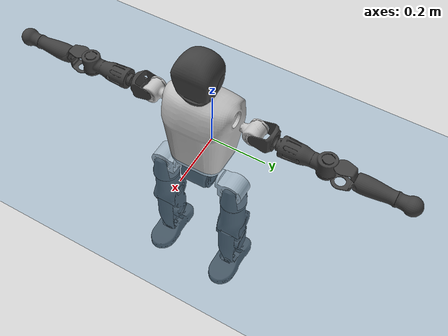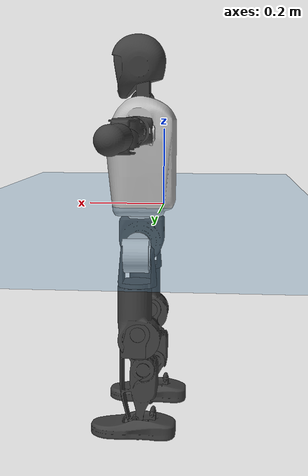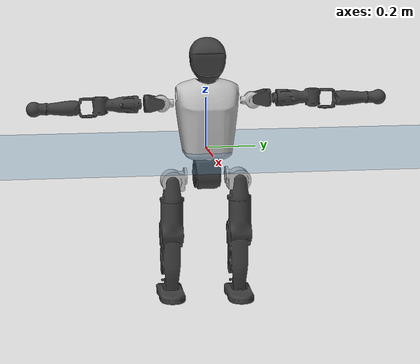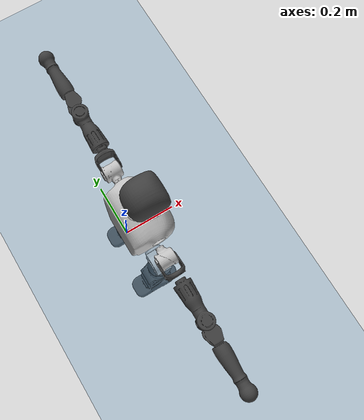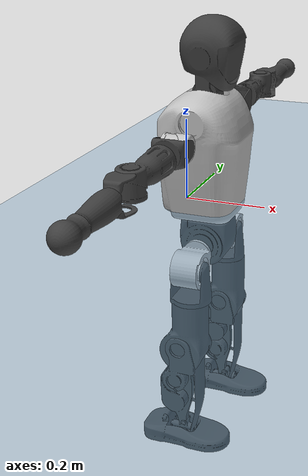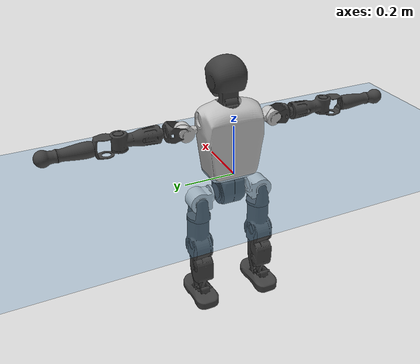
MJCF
<mujoco model="T1">
  <compiler angle="radian" assetdir="assets" balanceinertia="true" inertiafromgeom="false"/>

  <option timestep="0.005" density="1.2" viscosity="2e-05"/>

  <size nkey="1"/>

  <visual>
    <quality shadowsize="8192"/>
    <map shadowclip="0.5"/>
  </visual>

  <default>
    <default class="/">
      <joint armature="0.01" damping="0.01" frictionloss="0.1"/>
      <geom contype="0" conaffinity="0" group="1" solref="-1000 -80"/>
      <site size="0.01 0.005 0.005" group="5"/>
      <general forcelimited="true" biastype="affine" gainprm="25" biasprm="0 -25 -0.6"/>
      <default class="t1">
        <geom rgba="0.25 0.25 0.25 1"/>
        <default class="visual">
          <geom type="mesh" group="2"/>
        </default>
        <default class="collision">
          <geom group="3"/>
        </default>
        <default class="foot">
          <geom size="0.1115 0.05 0.015" type="box" condim="6" group="4" priority="1" solimp="0.015 1 0.015"/>
        </default>
        <default class="reward_collision_sphere">
          <geom group="5" rgba="1 0 0 1"/>
        </default>
      </default>
    </default>
  </default>

  <asset>
    <texture type="skybox" colorspace="auto" name="//unnamed_texture_0" builtin="gradient" rgb1="0.95 0.95 0.95" rgb2="0.95 0.95 0.95" width="100" height="600"/>
    <texture type="2d" colorspace="auto" name="texplane" builtin="checker" rgb1="0.345 0.575 0.748" rgb2="0.345 0.575 0.748" markrgb="1 1 1" width="512" height="512"/>
    <material name="MatPlane" class="/" texture="texplane" texuniform="true" texrepeat="2 2" specular="0.9"/>
    <mesh name="Trunk" class="/" file="Trunk.stl"/>
    <mesh name="H1" class="/" file="H1.stl"/>
    <mesh name="H2" class="/" file="H2.stl"/>
    <mesh name="AL1" class="/" file="AL1.stl"/>
    <mesh name="AL2" class="/" file="AL2.stl"/>
    <mesh name="AL3" class="/" file="AL3.stl"/>
    <mesh name="left_hand_link" class="/" file="left_hand_link.stl"/>
    <mesh name="AR1" class="/" file="AR1.stl"/>
    <mesh name="AR2" class="/" file="AR2.stl"/>
    <mesh name="AR3" class="/" file="AR3.stl"/>
    <mesh name="right_hand_link" class="/" file="right_hand_link.stl"/>
    <mesh name="Waist" class="/" file="Waist.stl"/>
    <mesh name="Hip_Pitch_Left" class="/" file="Hip_Pitch_Left.stl"/>
    <mesh name="Hip_Roll_Left" class="/" file="Hip_Roll_Left.stl"/>
    <mesh name="Hip_Yaw_Left" class="/" file="Hip_Yaw_Left.stl"/>
    <mesh name="Shank_Left" class="/" file="Shank_Left.stl"/>
    <mesh name="Ankle_Cross_Left" class="/" file="Ankle_Cross_Left.stl"/>
    <mesh name="left_foot_link" class="/" file="left_foot_link.stl"/>
    <mesh name="Hip_Pitch_Right" class="/" file="Hip_Pitch_Right.stl"/>
    <mesh name="Hip_Roll_Right" class="/" file="Hip_Roll_Right.stl"/>
    <mesh name="Hip_Yaw_Right" class="/" file="Hip_Yaw_Right.stl"/>
    <mesh name="Shank_Right" class="/" file="Shank_Right.stl"/>
    <mesh name="Ankle_Cross_Right" class="/" file="Ankle_Cross_Right.stl"/>
    <mesh name="right_foot_link" class="/" file="right_foot_link.stl"/>
  </asset>

  <worldbody>
    <geom name="floor" class="/" size="100 100 0.125" type="plane" group="0" material="MatPlane"/>
    <light name="toplight_shadow" class="/" pos="0 0 5" dir="0.0990148 0.0990148 -0.990148" type="directional" ambient="0.04 0.04 0.04" diffuse="0.55 0.55 0.55" specular="0.12 0.12 0.12"/>
    <light name="toplight_fill" class="/" pos="0 0 5" dir="0.0990148 0.0990148 -0.990148" type="directional" castshadow="false" ambient="0.04 0.04 0.04" diffuse="0.3 0.3 0.3" specular="0.08 0.08 0.08"/>
    <body name="trunk" childclass="t1" pos="0.00011497 -0.00245822 0.00658825" quat="0.999993 0.00375475 -0.00011196 7.46674e-06">
      <inertial pos="0.0536399 -0.00214491 0.0924321" quat="0.999952 0.00202952 -0.00928015 0.00243011" mass="14.1684" diaginertia="0.0813782 0.287976 0.0279549"/>
      <joint name="//unnamed_joint_0" type="free" armature="0" damping="0" frictionloss="0"/>
      <geom name="//unnamed_geom_1" class="visual" rgba="0.76 0.76 0.76 1" mesh="Trunk"/>
      <geom name="//unnamed_geom_2" class="collision" size="0.0775813 0.103442 0.155163" pos="0.0576277 0 0.102705" type="box"/>
      <geom name="//unnamed_geom_3" class="reward_collision_sphere" size="0.118958" pos="0.0576277 0 0.0855877"/>
      <geom name="//unnamed_geom_4" class="reward_collision_sphere" size="0.0155163" pos="0.0576277 0.109388 0"/>
      <geom name="//unnamed_geom_5" class="reward_collision_sphere" size="0.0155163" pos="0.0576277 -0.109388 0"/>
      <geom name="//unnamed_geom_6" class="reward_collision_sphere" size="0.0155163" pos="0.0576277 0.1377 0.154058"/>
      <geom name="//unnamed_geom_7" class="reward_collision_sphere" size="0.0155163" pos="0.0576277 -0.1377 0.154058"/>
      <site name="imu" pos="0.0319789 -0.0112354 -0.00275917" size="0.0103442"/>
      <camera name="track" pos="0 -2.57383 0" quat="0.707107 0.707107 0 0" mode="trackcom"/>
      <camera name="ego_camera" pos="0.117176 0 0.359468" quat="-0.5 -0.5 0.5 0.5"/>
      <body name="H1" pos="0.0569503 -0.00036766 0.204341" quat="0.999996 0.00148688 0.00238205 0.000872867">
        <inertial pos="-0.00511047 -0.00288033 0.050652" quat="0.76691 -0.0170492 -0.00618195 0.641499" mass="0.488737" diaginertia="0.000199114 0.000755167 7.32094e-05"/>
        <joint name="AAHead_yaw" pos="0 0 0" axis="-0.0058057 -0.00874358 0.999945" range="-1.40693 1.54623" armature="0.0113651" damping="0.00971811" frictionloss="0.104351"/>
        <geom name="//unnamed_geom_8" class="visual" mesh="H1"/>
        <body name="H2" pos="-0.00237713 0.00115207 0.0490872" quat="0.999994 -0.00154209 -0.00119919 -0.00293025">
          <inertial pos="0.00758111 0.00307258 0.0845965" quat="0.988354 0.106478 -0.0761 -0.0776374" mass="0.763945" diaginertia="0.0017343 0.00712979 0.000794679"/>
          <joint name="Head_pitch" pos="0 0 0" axis="0.00410039 -0.999525 0.030533" range="-1.15245 0.219979" armature="0.00764955" damping="0" frictionloss="0.0668065"/>
          <geom name="//unnamed_geom_9" class="visual" mesh="H2"/>
          <geom name="//unnamed_geom_10" class="collision" size="0.0827534" pos="0.00960461 0 0.0941464"/>
          <geom name="//unnamed_geom_11" class="reward_collision_sphere" size="0.0930976" pos="0.0192092 0 0.0855877"/>
        </body>
      </body>
      <body name="AL1" pos="0.0488418 0.135283 0.186434" quat="0.999999 -0.00140485 4.68066e-05 -0.000417165">
        <inertial pos="0.00650423 0.0579936 0.000481678" quat="0.513603 0.5041 -0.49561 0.486278" mass="0.599914" diaginertia="0.00116264 0.00420025 0.000133907"/>
        <joint name="Left_Shoulder_Pitch" pos="0 0 0" axis="-0.00437367 0.99999 0.00136024" range="-3.33757 1.20914" armature="0.0111904" damping="0" frictionloss="0.103512"/>
        <geom name="//unnamed_geom_12" class="visual" rgba="0.76 0.76 0.76 1" mesh="AL1"/>
        <body name="AL2" pos="0.00264745 0.0616559 0.00738833" quat="0.999995 0.00178411 0.00184356 0.00201529">
          <inertial pos="0.00373597 0.0472644 0.00532895" quat="0.488113 0.510828 -0.488911 0.511631" mass="0.169925" diaginertia="0.000325349 0.00126627 8.34218e-05"/>
          <joint name="Left_Shoulder_Roll" pos="0 0 0" axis="-0.999453 -0.026674 0.0195573" range="-1.5658 1.70817" armature="0.0116162" damping="0.0112994" frictionloss="0.137207"/>
          <geom name="//unnamed_geom_13" class="visual" mesh="AL2"/>
          <body name="AL3" pos="0.00695775 0.0788103 -0.000745522" quat="0.999999 -0.00140054 -0.00063936 0.000308688">
            <inertial pos="-0.00203994 0.109825 -0.0055838" quat="0.706052 0.708156 -0.00226799 0.000517253" mass="1.11229" diaginertia="0.0105486 0.0443476 0.000292023"/>
            <joint name="Left_Elbow_Pitch" pos="0 0 0" axis="0.029185 -0.99957 0.00267791" range="-2.23572 2.25987" armature="0.00989438" damping="0.00254852" frictionloss="0.102748"/>
            <geom name="//unnamed_geom_14" class="visual" mesh="AL3"/>
            <geom name="//unnamed_geom_15" class="collision" size="0.0310325 0.0775813" pos="0 0.0643457 0" quat="0.707105 0.707108 0 0" type="cylinder"/>
            <geom name="//unnamed_geom_16" class="reward_collision_sphere" size="0.037239"/>
            <body name="left_hand_link" pos="0.00260254 0.195454 -0.00744492" quat="1 -0.000172531 -0.000176904 -6.70713e-05">
              <inertial pos="-1.59372e-05 0.140386 -0.00281081" quat="0.70554 0.708633 0.00550111 0.0046503" mass="0.329774" diaginertia="0.00658661 0.0251618 8.99387e-05"/>
              <joint name="Left_Elbow_Yaw" pos="0 0 0" axis="-0.0181166 0.0194867 0.999646" stiffness="0.0130958" range="-2.42445 0.033283" armature="0.011804" damping="0.0182405" frictionloss="0.0914965"/>
              <geom name="//unnamed_geom_17" class="visual" mesh="left_hand_link"/>
              <geom name="//unnamed_geom_18" class="collision" size="0.0310325 0.0905115" pos="0 0.167299 0" quat="0.707105 0.707108 0 0" type="cylinder"/>
              <geom name="//unnamed_geom_19" class="reward_collision_sphere" size="0.0517209"/>
              <geom name="//unnamed_geom_20" class="reward_collision_sphere" size="0.0362046" pos="0 0.141561 0"/>
              <geom name="//unnamed_geom_21" class="reward_collision_sphere" size="0.0362046" pos="0 0.276687 0"/>
            </body>
          </body>
        </body>
      </body>
      <body name="AR1" pos="0.0515243 -0.132625 0.182758" quat="0.999997 0.00183749 -0.00167487 0.000825733">
        <inertial pos="-0.00101486 -0.057506 0.00174667" quat="0.503188 0.494352 -0.507328 0.495012" mass="0.571119" diaginertia="0.00117182 0.00454862 0.000132345"/>
        <joint name="Right_Shoulder_Pitch" pos="0 0 0" axis="0.0032377 -0.999951 -0.00931126" stiffness="0.0228071" range="-1.22711 3.26043" armature="0.00976174" damping="0.0261598" frictionloss="0.115225"/>
        <geom name="//unnamed_geom_22" class="visual" rgba="0.76 0.76 0.76 1" mesh="AR1"/>
        <body name="AR2" pos="0.000130921 -0.0589438 0.00178686" quat="0.999999 7.57498e-05 4.71859e-05 0.00111142">
          <inertial pos="0.00358427 -0.0484676 -0.0027045" quat="0.506844 0.488304 -0.511599 0.492885" mass="0.189928" diaginertia="0.000298912 0.0011931 8.70604e-05"/>
          <joint name="Right_Shoulder_Roll" pos="0 0 0" axis="-0.999934 0.0105267 0.00470223" range="-1.71059 1.57385" armature="0.010339" damping="0.00569052" frictionloss="0.0762299"/>
          <geom name="//unnamed_geom_23" class="visual" mesh="AR2"/>
          <body name="AR3" pos="0.0022427 -0.0823812 -0.0012009" quat="1 -5.274e-05 5.48883e-05 -0.000700973">
            <inertial pos="0.00708151 -0.107996 0.00189014" quat="0.708854 0.705178 -0.0101415 -0.0121464" mass="1.06031" diaginertia="0.0110736 0.0488009 0.000284858"/>
            <joint name="Right_Elbow_Pitch" pos="0 0 0" axis="-0.000381901 0.999985 -0.0055006" stiffness="0.0358533" range="-2.26815 2.28821" armature="0.01259" damping="0.00265823" frictionloss="0.0918633"/>
            <geom name="//unnamed_geom_24" class="visual" mesh="AR3"/>
            <geom name="//unnamed_geom_25" class="collision" size="0.0310325 0.0775813" pos="0 -0.0643457 0" quat="0.707105 0.707108 0 0" type="cylinder"/>
            <geom name="//unnamed_geom_26" class="reward_collision_sphere" size="0.037239"/>
            <body name="right_hand_link" pos="-0.00135544 -0.188465 -0.00726094" quat="1 0.000284893 7.42584e-05 0.000288419">
              <inertial pos="0.00285024 -0.144699 -0.000418365" quat="0.708688 0.705511 -0.00371526 0.00171179" mass="0.364755" diaginertia="0.00675883 0.0289136 9.87252e-05"/>
              <joint name="Right_Elbow_Yaw" pos="0 0 0" axis="0.000408118 -0.00106641 0.999999" range="-0.046835 2.4403" armature="0.010091" damping="0.011918" frictionloss="0.114279"/>
              <geom name="//unnamed_geom_27" class="visual" mesh="right_hand_link"/>
              <geom name="//unnamed_geom_28" class="collision" size="0.0310325 0.0905115" pos="0 -0.167299 0" quat="0.707105 0.707108 0 0" type="cylinder"/>
              <geom name="//unnamed_geom_29" class="reward_collision_sphere" size="0.0517209"/>
              <geom name="//unnamed_geom_30" class="reward_collision_sphere" size="0.0362046" pos="0 -0.141561 0"/>
              <geom name="//unnamed_geom_31" class="reward_collision_sphere" size="0.0362046" pos="0 -0.276687 0"/>
            </body>
          </body>
        </body>
      </body>
      <body name="Waist" pos="0.0584106 -0.0033484 -0.102772" quat="1 3.52429e-05 0.000733082 0.000287263">
        <inertial pos="0.00133504 0.00109016 0.00643011" quat="0.983047 0.00346213 -0.183311 -0.00166691" mass="2.90189" diaginertia="0.00460682 0.017699 0.00228151"/>
        <joint name="Waist" pos="0 0 0" axis="0.00622643 -0.0049288 0.999968" stiffness="0.0061075" range="-1.49922 1.54908" armature="0.0109438" damping="0.0338367" frictionloss="0.105348"/>
        <geom name="//unnamed_geom_32" class="visual" mesh="Waist"/>
        <body name="Hip_Pitch_Left" pos="0.00422947 0.128693 -0.00582579" quat="1 0.000621149 -0.000194265 -0.00049972">
          <inertial pos="0.00331692 -0.00827571 -0.00808649" quat="0.974322 0.224158 0.0211837 -0.00107695" mass="1.03541" diaginertia="0.0014214 0.00522821 0.00058529"/>
          <joint name="Left_Hip_Pitch" pos="0 0 0" axis="-0.00410874 0.999951 -0.00903136" stiffness="0.0186763" range="-1.89033 1.59241" armature="0.0103403" damping="0.0281227" frictionloss="0.12846"/>
          <geom name="//unnamed_geom_33" class="visual" rgba="0.76 0.76 0.76 1" mesh="Hip_Pitch_Left"/>
          <body name="Hip_Roll_Left" pos="-0.000225095 0.000154265 -0.0213642" quat="1 -0.00014325 7.81813e-05 0.000397478">
            <inertial pos="0.000624741 -0.00205035 -0.0457971" quat="0.706507 -0.00402972 -0.00571875 0.707672" mass="0.397117" diaginertia="0.00133131 0.00501941 0.000230263"/>
            <joint name="Left_Hip_Roll" pos="0 0 0" axis="-0.999997 0.00244791 -0.000940424" stiffness="0.00506439" range="-1.63381 0.208306" armature="0.0102679" damping="0" frictionloss="0.11994"/>
            <geom name="//unnamed_geom_34" class="visual" mesh="Hip_Roll_Left"/>
            <geom name="//unnamed_geom_35" class="reward_collision_sphere" size="0.056893"/>
            <body name="Hip_Yaw_Left" pos="0.00433437 0.00194164 -0.0783664" quat="1 -0.000191914 -3.58593e-05 -0.000124977">
              <inertial pos="-0.00456143 0.000699266 -0.0702329" quat="0.697506 -0.0325442 -0.0288885 0.715256" mass="2.51419" diaginertia="0.0191093 0.091474 0.00120934"/>
              <joint name="Left_Hip_Yaw" pos="0 0 0" axis="0.00776472 -0.017249 -0.999821" stiffness="0.0367923" range="-1.02616 0.931982" armature="0.0121183" damping="0.0132332" frictionloss="0.131543"/>
              <geom name="//unnamed_geom_36" class="visual" mesh="Hip_Yaw_Left"/>
              <geom name="//unnamed_geom_37" class="collision" size="0.0517209 0.0827534" type="cylinder"/>
              <body name="Shank_Left" pos="-0.0110513 -0.00597855 -0.120424" quat="0.999994 -0.00164701 -0.00265322 -0.00171578">
                <inertial pos="-0.00656519 0.00838586 -0.107052" quat="0.998224 -0.0117917 -0.0372777 0.0449451" mass="1.87139" diaginertia="0.0265005 0.117359 0.000863116"/>
                <joint name="Left_Knee_Pitch" pos="0 0 0" axis="-0.00323794 0.999994 -0.000933638" range="-0.0308045 2.34745" armature="0.00869411" damping="0" frictionloss="0.134166"/>
                <geom name="//unnamed_geom_38" class="visual" mesh="Shank_Left"/>
                <geom name="//unnamed_geom_39" class="collision" size="0.0517209 0.0775813" pos="0 0 -0.102705" type="cylinder"/>
                <geom name="//unnamed_geom_40" class="reward_collision_sphere" size="0.0672371"/>
                <body name="Ankle_Cross_Left" pos="0.00725506 -0.000431443 -0.24013" quat="1 0.000203449 -6.89182e-05 -6.02588e-05">
                  <inertial pos="-0.00102598 -0.00195425 -0.00499559" quat="0.449637 0.526806 0.549302 0.467513" mass="0.0826439" diaginertia="2.36019e-05 8.90435e-05 5.25676e-06"/>
                  <joint name="Left_Ankle_Pitch" pos="0 0 0" axis="0.00962289 0.999922 -0.00802409" range="-0.888206 0.455259" armature="0.0104471" damping="0" frictionloss="0.0991547"/>
                  <geom name="//unnamed_geom_41" class="visual" mesh="Ankle_Cross_Left"/>
                  <body name="left_foot_link" pos="-0.00346623 0.00203748 -0.0112998" quat="0.999999 0.00114147 -0.000315797 0.000378606">
                    <inertial pos="0.000941253 0.000787254 -0.0156013" quat="0.000519036 0.619606 0.00236082 0.784909" mass="0.775325" diaginertia="0.00228218 0.00814129 0.00101413"/>
                    <joint name="Left_Ankle_Roll" pos="0 0 0" axis="-0.99997 -0.00548286 -0.00545574" range="-0.382304 0.4333" armature="0.0105844" damping="0" frictionloss="0.103336"/>
                    <geom name="//unnamed_geom_42" class="visual" mesh="left_foot_link"/>
                    <geom name="left_foot" class="foot" size="0.0905431 0.0398269 0.0150072" pos="0.00960461 0 -0.0128382"/>
                    <geom name="//unnamed_geom_44" class="reward_collision_sphere" size="0.0537897" pos="0.00960461 0 -0.0128382"/>
                    <geom name="//unnamed_geom_45" class="reward_collision_sphere" size="0.0310325" pos="0.0912438 -0.029599 -0.0128382"/>
                    <geom name="//unnamed_geom_46" class="reward_collision_sphere" size="0.0310325" pos="-0.0672323 -0.029599 -0.0128382"/>
                    <site name="left_foot" class="foot" pos="0.00960461 0 -0.0128382" size="0.0103442"/>
                  </body>
                </body>
              </body>
            </body>
          </body>
        </body>
        <body name="Hip_Pitch_Right" pos="0.00318338 -0.138054 -0.00549191" quat="0.999995 -0.00202456 -0.00232672 0.000563491">
          <inertial pos="0.000636207 0.0169871 -0.0138244" quat="0.973594 -0.227796 0.0144588 -0.00394971" mass="1.15239" diaginertia="0.00154398 0.00529903 0.000575513"/>
          <joint name="Right_Hip_Pitch" pos="0 0 0" axis="-0.00416407 -0.999952 -0.0088252" stiffness="0.00448375" range="-1.61334 1.90264" armature="0.010116" damping="0" frictionloss="0.0673367"/>
          <geom name="//unnamed_geom_47" class="visual" rgba="0.76 0.76 0.76 1" mesh="Hip_Pitch_Right"/>
          <body name="Hip_Roll_Right" pos="0.00528876 -0.00274587 -0.0209536" quat="1 0.000622651 0.000533406 0.000260066">
            <inertial pos="0.00054928 -0.00103201 -0.0465295" quat="0.707075 -0.00611617 -0.00606801 0.707086" mass="0.427311" diaginertia="0.0015736 0.00538656 0.000238927"/>
            <joint name="Right_Hip_Roll" pos="0 0 0" axis="-0.999994 -0.00326447 0.000968272" stiffness="0.0056344" range="-0.250601 1.5608" armature="0.00944833" damping="0.00522716" frictionloss="0.0800456"/>
            <geom name="//unnamed_geom_48" class="visual" mesh="Hip_Roll_Right"/>
            <geom name="//unnamed_geom_49" class="reward_collision_sphere" size="0.056893"/>
            <body name="Hip_Yaw_Right" pos="-0.0047364 -0.000223926 -0.0749988" quat="1 -2.75241e-06 -2.24027e-05 -8.16963e-05">
              <inertial pos="-0.00195991 -0.00793116 -0.0746468" quat="0.713788 -0.0318156 -0.0259383 0.699157" mass="2.61638" diaginertia="0.0214569 0.0989842 0.00130259"/>
              <joint name="Right_Hip_Yaw" pos="0 0 0" axis="-0.00328052 0.00152318 -0.999993" range="-0.972809 1.03018" armature="0.0106031" damping="0" frictionloss="0.101818"/>
              <geom name="//unnamed_geom_50" class="visual" mesh="Hip_Yaw_Right"/>
              <geom name="//unnamed_geom_51" class="collision" size="0.0517209 0.0827534" type="cylinder"/>
              <body name="Shank_Right" pos="-0.0178356 -0.00303063 -0.121938" quat="1 0.000381128 0.000154187 -0.00027363">
                <inertial pos="0.00269568 0.000651848 -0.102349" quat="0.998501 0.00577062 0.00218406 -0.0543846" mass="2.07675" diaginertia="0.0305189 0.128163 0.0010048"/>
                <joint name="Right_Knee_Pitch" pos="0 0 0" axis="-0.000415956 -0.999961 0.00882951" range="-2.32349 0.110448" armature="0.0107452" damping="0.00931445" frictionloss="0.118876"/>
                <geom name="//unnamed_geom_52" class="visual" mesh="Shank_Right"/>
                <geom name="//unnamed_geom_53" class="collision" size="0.0517209 0.0775813" pos="0 0 -0.102705" type="cylinder"/>
                <geom name="//unnamed_geom_54" class="reward_collision_sphere" size="0.0672371"/>
                <body name="Ankle_Cross_Right" pos="0.00100203 0.000503057 -0.234689" quat="1 -0.000160889 -0.000148077 0.000228539">
                  <inertial pos="-0.00568042 0.00135297 -0.00924673" quat="0.442593 0.555012 0.545458 0.445588" mass="0.0811836" diaginertia="2.34063e-05 8.66238e-05 5.08166e-06"/>
                  <joint name="Right_Ankle_Pitch" pos="0 0 0" axis="0.00616125 -0.999973 0.00401288" range="-0.51731 0.823085" armature="0.00921263" damping="0.00892199" frictionloss="0.102024"/>
                  <geom name="//unnamed_geom_55" class="visual" mesh="Ankle_Cross_Right"/>
                  <body name="right_foot_link" pos="-0.00363146 -0.00234334 -0.0131029" quat="1 2.0107e-05 -0.000718982 0.000552144">
                    <inertial pos="0.00162456 -0.00020362 -0.0152015" quat="-0.00998476 0.619361 -0.00401821 0.785033" mass="0.744123" diaginertia="0.00220464 0.00873723 0.000996577"/>
                    <joint name="Right_Ankle_Roll" pos="0 0 0" axis="-0.999996 0.000151154 -0.00290753" range="-0.468685 0.468955" armature="0.0115976" damping="0.00381959" frictionloss="0.0605541"/>
                    <geom name="//unnamed_geom_56" class="visual" mesh="right_foot_link"/>
                    <geom name="right_foot" class="foot" size="0.099022 0.0661203 0.0107989" pos="0.00960461 0 -0.0128382"/>
                    <geom name="//unnamed_geom_58" class="reward_collision_sphere" size="0.0413767"/>
                    <geom name="//unnamed_geom_59" class="reward_collision_sphere" size="0.0310325" pos="0.00960461 0 -0.0128382"/>
                    <geom name="//unnamed_geom_60" class="reward_collision_sphere" size="0.0310325" pos="0.0912438 0.029599 -0.0128382"/>
                    <geom name="//unnamed_geom_61" class="reward_collision_sphere" size="0.0310325" pos="-0.0672323 0.029599 -0.0128382"/>
                    <site name="right_foot" class="foot" pos="0.00960461 0 -0.0128382" size="0.0103442"/>
                  </body>
                </body>
              </body>
            </body>
          </body>
        </body>
      </body>
    </body>
  </worldbody>

  <contact>
    <pair class="/" geom1="floor" geom2="left_foot" name="//unnamed_contact_0"/>
    <pair class="/" geom1="floor" geom2="right_foot" name="//unnamed_contact_1"/>
  </contact>

  <actuator>
    <general name="AAHead_yaw" class="/" joint="AAHead_yaw" forcerange="-7.47289 7.47289" gainprm="23.2332" biasprm="0 -23.2332 -0.651723"/>
    <general name="Head_pitch" class="/" joint="Head_pitch" forcerange="-7.09102 7.09102" gainprm="23.2332" biasprm="0 -23.2332 -0.651723"/>
    <general name="Left_Shoulder_Pitch" class="/" joint="Left_Shoulder_Pitch" forcerange="-18.7955 18.7955" gainprm="23.2332" biasprm="0 -23.2332 -0.651723"/>
    <general name="Left_Shoulder_Roll" class="/" joint="Left_Shoulder_Roll" forcerange="-19.4358 19.4358" gainprm="23.2332" biasprm="0 -23.2332 -0.651723"/>
    <general name="Left_Elbow_Pitch" class="/" joint="Left_Elbow_Pitch" forcerange="-22.1938 22.1938" gainprm="23.2332" biasprm="0 -23.2332 -0.651723"/>
    <general name="Left_Elbow_Yaw" class="/" joint="Left_Elbow_Yaw" forcerange="-18.917 18.917" gainprm="23.2332" biasprm="0 -23.2332 -0.651723"/>
    <general name="Right_Shoulder_Pitch" class="/" joint="Right_Shoulder_Pitch" forcerange="-20.1659 20.1659" gainprm="23.2332" biasprm="0 -23.2332 -0.651723"/>
    <general name="Right_Shoulder_Roll" class="/" joint="Right_Shoulder_Roll" forcerange="-17.3004 17.3004" gainprm="23.2332" biasprm="0 -23.2332 -0.651723"/>
    <general name="Right_Elbow_Pitch" class="/" joint="Right_Elbow_Pitch" forcerange="-18.4598 18.4598" gainprm="23.2332" biasprm="0 -23.2332 -0.651723"/>
    <general name="Right_Elbow_Yaw" class="/" joint="Right_Elbow_Yaw" forcerange="-19.8806 19.8806" gainprm="23.2332" biasprm="0 -23.2332 -0.651723"/>
    <general name="Waist" class="/" joint="Waist" forcerange="-30.2542 30.2542" gainprm="23.2332" biasprm="0 -23.2332 -0.651723"/>
    <general name="Left_Hip_Pitch" class="/" joint="Left_Hip_Pitch" forcerange="-47.8915 47.8915" gainprm="23.2332" biasprm="0 -23.2332 -0.651723"/>
    <general name="Left_Hip_Roll" class="/" joint="Left_Hip_Roll" forcerange="-22.8799 22.8799" gainprm="23.2332" biasprm="0 -23.2332 -0.651723"/>
    <general name="Left_Hip_Yaw" class="/" joint="Left_Hip_Yaw" forcerange="-33.5544 33.5544" gainprm="23.2332" biasprm="0 -23.2332 -0.651723"/>
    <general name="Left_Knee_Pitch" class="/" joint="Left_Knee_Pitch" forcerange="-46.9813 46.9813" gainprm="23.2332" biasprm="0 -23.2332 -0.651723"/>
    <general name="Left_Ankle_Pitch" class="/" joint="Left_Ankle_Pitch" forcerange="-22.212 22.212" gainprm="23.2332" biasprm="0 -23.2332 -0.651723"/>
    <general name="Left_Ankle_Roll" class="/" joint="Left_Ankle_Roll" forcerange="-16.3522 16.3522" gainprm="23.2332" biasprm="0 -23.2332 -0.651723"/>
    <general name="Right_Hip_Pitch" class="/" joint="Right_Hip_Pitch" forcerange="-56.186 56.186" gainprm="23.2332" biasprm="0 -23.2332 -0.651723"/>
    <general name="Right_Hip_Roll" class="/" joint="Right_Hip_Roll" forcerange="-28.5905 28.5905" gainprm="23.2332" biasprm="0 -23.2332 -0.651723"/>
    <general name="Right_Hip_Yaw" class="/" joint="Right_Hip_Yaw" forcerange="-28.3028 28.3028" gainprm="23.2332" biasprm="0 -23.2332 -0.651723"/>
    <general name="Right_Knee_Pitch" class="/" joint="Right_Knee_Pitch" forcerange="-61.0024 61.0024" gainprm="23.2332" biasprm="0 -23.2332 -0.651723"/>
    <general name="Right_Ankle_Pitch" class="/" joint="Right_Ankle_Pitch" forcerange="-20.3157 20.3157" gainprm="23.2332" biasprm="0 -23.2332 -0.651723"/>
    <general name="Right_Ankle_Roll" class="/" joint="Right_Ankle_Roll" forcerange="-14.3091 14.3091" gainprm="23.2332" biasprm="0 -23.2332 -0.651723"/>
  </actuator>

  <sensor>
    <gyro site="imu" name="imu_angular_velocity"/>
    <velocimeter site="imu" name="imu_linear_velocity"/>
    <framelinvel objtype="site" objname="left_foot" name="left_foot_global_linear_velocity"/>
    <framelinvel objtype="site" objname="right_foot" name="right_foot_global_linear_velocity"/>
  </sensor>

  <keyframe>
    <key name="home" qpos="0 0 0.6385 1 0 0 0 0 0 0 1.4 0 -0.4 0 -1.4 0 0.4 0 -0.4 0 0 0.8 -0.4 0 0.4 0 0 -0.8 0.4 0"/>
  </keyframe>
</mujoco>
